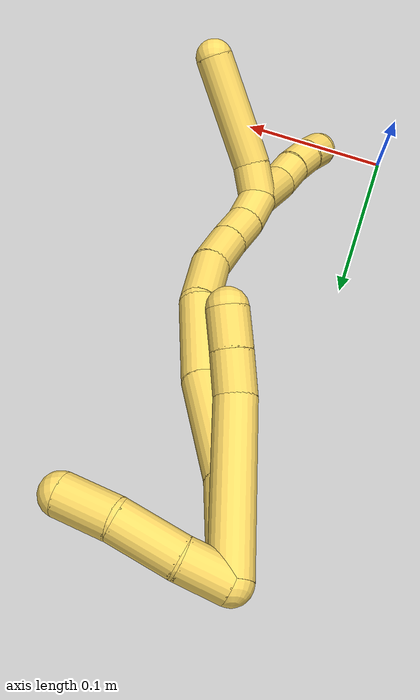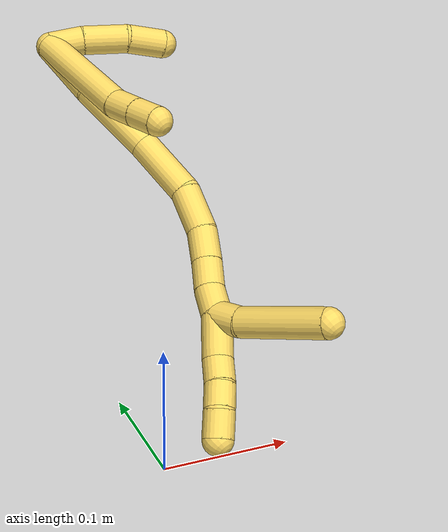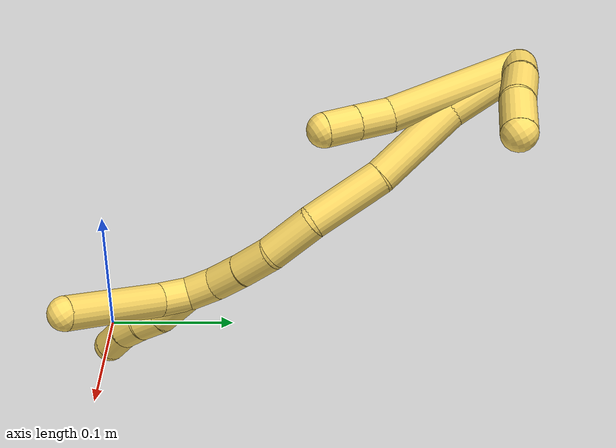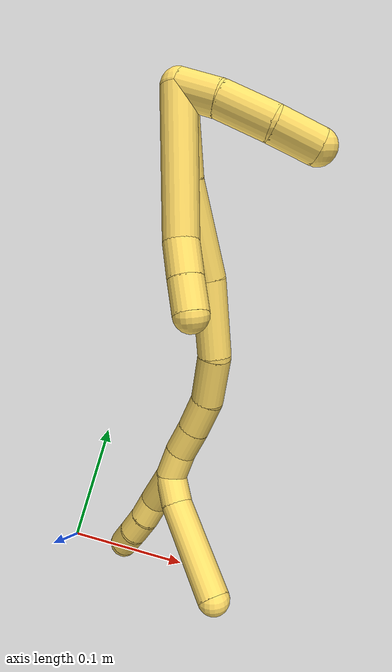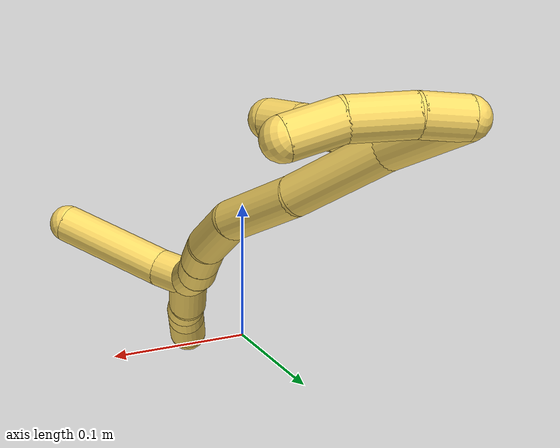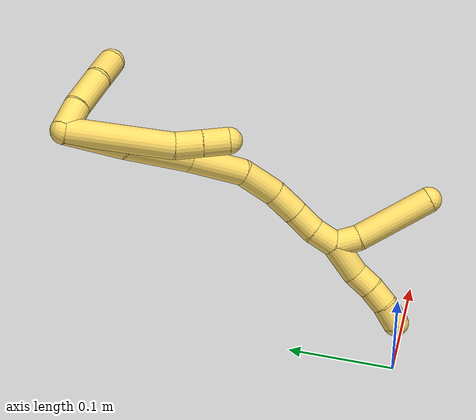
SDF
<sdf version="1.7">
 <world name="default">
  <model name="5">
   <static>0</static>
   <link name="5">
    <collision name="collision-cylinder-e_1_2_8">
     <pose>0.002939 -0.010039 -0.048881 2.93903 0.058821 0.563554</pose>
     <geometry><cylinder><radius>0.0125</radius><length>0.099975</length></cylinder></geometry>
     <surface>
      <friction><ode><mu>1.16</mu><mu2>1.16</mu2><slip1>0</slip1><slip2>0</slip2></ode></friction>
      <contact><ode><kp>1e+06</kp><kd>1</kd><max_vel>0</max_vel><min_depth>0.001</min_depth></ode></contact>
     </surface>
    </collision>
    <visual name="visual-cylinder-e_1_2_8">
     <pose>0.002939 -0.010039 -0.048881 2.93903 0.058821 0.563554</pose>
     <geometry><cylinder><radius>0.0125</radius><length>0.099975</length></cylinder></geometry>
     <material><ambient>1 0.858824 0.4 1</ambient></material>
    </visual>
    <collision name="collision-cylinder-e_2_8_9">
     <pose>0.00922 -0.023979 -0.10948 2.82025 0.264301 1.37385</pose>
     <geometry><cylinder><radius>0.0125</radius><length>0.025591</length></cylinder></geometry>
     <surface>
      <friction><ode><mu>1.16</mu><mu2>1.16</mu2><slip1>0</slip1><slip2>0</slip2></ode></friction>
      <contact><ode><kp>1e+06</kp><kd>1</kd><max_vel>0</max_vel><min_depth>0.001</min_depth></ode></contact>
     </surface>
    </collision>
    <visual name="visual-cylinder-e_2_8_9">
     <pose>0.00922 -0.023979 -0.10948 2.82025 0.264301 1.37385</pose>
     <geometry><cylinder><radius>0.0125</radius><length>0.025591</length></cylinder></geometry>
     <material><ambient>1 0.858824 0.4 1</ambient></material>
    </visual>
    <collision name="collision-cylinder-e_3_9_6">
     <pose>0.015956 -0.031481 -0.13237 2.82972 0.281454 1.46683</pose>
     <geometry><cylinder><radius>0.0125</radius><length>0.024434</length></cylinder></geometry>
     <surface>
      <friction><ode><mu>1.16</mu><mu2>1.16</mu2><slip1>0</slip1><slip2>0</slip2></ode></friction>
      <contact><ode><kp>1e+06</kp><kd>1</kd><max_vel>0</max_vel><min_depth>0.001</min_depth></ode></contact>
     </surface>
    </collision>
    <visual name="visual-cylinder-e_3_9_6">
     <pose>0.015956 -0.031481 -0.13237 2.82972 0.281454 1.46683</pose>
     <geometry><cylinder><radius>0.0125</radius><length>0.024434</length></cylinder></geometry>
     <material><ambient>1 0.858824 0.4 1</ambient></material>
    </visual>
    <collision name="collision-cylinder-e_1_2_10">
     <pose>0.012806 0.003598 -0.005321 -2.547 1.10585 -2.21999</pose>
     <geometry><cylinder><radius>0.0125</radius><length>0.028654</length></cylinder></geometry>
     <surface>
      <friction><ode><mu>1.16</mu><mu2>1.16</mu2><slip1>0</slip1><slip2>0</slip2></ode></friction>
      <contact><ode><kp>1e+06</kp><kd>1</kd><max_vel>0</max_vel><min_depth>0.001</min_depth></ode></contact>
     </surface>
    </collision>
    <visual name="visual-cylinder-e_1_2_10">
     <pose>0.012806 0.003598 -0.005321 -2.547 1.10585 -2.21999</pose>
     <geometry><cylinder><radius>0.0125</radius><length>0.028654</length></cylinder></geometry>
     <material><ambient>1 0.858824 0.4 1</ambient></material>
    </visual>
    <collision name="collision-cylinder-e_2_10_11">
     <pose>0.041375 0.013219 -0.02011 -2.57504 0.952163 -2.1137</pose>
     <geometry><cylinder><radius>0.0125</radius><length>0.038697</length></cylinder></geometry>
     <surface>
      <friction><ode><mu>1.16</mu><mu2>1.16</mu2><slip1>0</slip1><slip2>0</slip2></ode></friction>
      <contact><ode><kp>1e+06</kp><kd>1</kd><max_vel>0</max_vel><min_depth>0.001</min_depth></ode></contact>
     </surface>
    </collision>
    <visual name="visual-cylinder-e_2_10_11">
     <pose>0.041375 0.013219 -0.02011 -2.57504 0.952163 -2.1137</pose>
     <geometry><cylinder><radius>0.0125</radius><length>0.038697</length></cylinder></geometry>
     <material><ambient>1 0.858824 0.4 1</ambient></material>
    </visual>
    <collision name="collision-cylinder-e_3_11_5">
     <pose>0.068519 0.027801 -0.037559 -2.3212 0.771458 -1.50234</pose>
     <geometry><cylinder><radius>0.0125</radius><length>0.032649</length></cylinder></geometry>
     <surface>
      <friction><ode><mu>1.16</mu><mu2>1.16</mu2><slip1>0</slip1><slip2>0</slip2></ode></friction>
      <contact><ode><kp>1e+06</kp><kd>1</kd><max_vel>0</max_vel><min_depth>0.001</min_depth></ode></contact>
     </surface>
    </collision>
    <visual name="visual-cylinder-e_3_11_5">
     <pose>0.068519 0.027801 -0.037559 -2.3212 0.771458 -1.50234</pose>
     <geometry><cylinder><radius>0.0125</radius><length>0.032649</length></cylinder></geometry>
     <material><ambient>1 0.858824 0.4 1</ambient></material>
    </visual>
    <collision name="collision-cylinder-e_1_2_12">
     <pose>-0.000175 0.000205 -0.02938 -3.13463 -0.00596 1.41583</pose>
     <geometry><cylinder><radius>0.0125</radius><length>0.058763</length></cylinder></geometry>
     <surface>
      <friction><ode><mu>1.16</mu><mu2>1.16</mu2><slip1>0</slip1><slip2>0</slip2></ode></friction>
      <contact><ode><kp>1e+06</kp><kd>1</kd><max_vel>0</max_vel><min_depth>0.001</min_depth></ode></contact>
     </surface>
    </collision>
    <visual name="visual-cylinder-e_1_2_12">
     <pose>-0.000175 0.000205 -0.02938 -3.13463 -0.00596 1.41583</pose>
     <geometry><cylinder><radius>0.0125</radius><length>0.058763</length></cylinder></geometry>
     <material><ambient>1 0.858824 0.4 1</ambient></material>
    </visual>
    <collision name="collision-cylinder-e_2_12_13">
     <pose>0.002069 0.006655 -0.09262 -2.95917 0.070133 -0.732471</pose>
     <geometry><cylinder><radius>0.0125</radius><length>0.069031</length></cylinder></geometry>
     <surface>
      <friction><ode><mu>1.16</mu><mu2>1.16</mu2><slip1>0</slip1><slip2>0</slip2></ode></friction>
      <contact><ode><kp>1e+06</kp><kd>1</kd><max_vel>0</max_vel><min_depth>0.001</min_depth></ode></contact>
     </surface>
    </collision>
    <visual name="visual-cylinder-e_2_12_13">
     <pose>0.002069 0.006655 -0.09262 -2.95917 0.070133 -0.732471</pose>
     <geometry><cylinder><radius>0.0125</radius><length>0.069031</length></cylinder></geometry>
     <material><ambient>1 0.858824 0.4 1</ambient></material>
    </visual>
    <collision name="collision-cylinder-e_3_13_14">
     <pose>0.004316 0.013487 -0.155008 -3.12107 -0.006003 0.569058</pose>
     <geometry><cylinder><radius>0.0125</radius><length>0.057071</length></cylinder></geometry>
     <surface>
      <friction><ode><mu>1.16</mu><mu2>1.16</mu2><slip1>0</slip1><slip2>0</slip2></ode></friction>
      <contact><ode><kp>1e+06</kp><kd>1</kd><max_vel>0</max_vel><min_depth>0.001</min_depth></ode></contact>
     </surface>
    </collision>
    <visual name="visual-cylinder-e_3_13_14">
     <pose>0.004316 0.013487 -0.155008 -3.12107 -0.006003 0.569058</pose>
     <geometry><cylinder><radius>0.0125</radius><length>0.057071</length></cylinder></geometry>
     <material><ambient>1 0.858824 0.4 1</ambient></material>
    </visual>
    <collision name="collision-cylinder-e_4_14_15">
     <pose>-0.001527 0.015624 -0.201604 -3.05597 -0.30312 2.59466</pose>
     <geometry><cylinder><radius>0.0125</radius><length>0.037998</length></cylinder></geometry>
     <surface>
      <friction><ode><mu>1.16</mu><mu2>1.16</mu2><slip1>0</slip1><slip2>0</slip2></ode></friction>
      <contact><ode><kp>1e+06</kp><kd>1</kd><max_vel>0</max_vel><min_depth>0.001</min_depth></ode></contact>
     </surface>
    </collision>
    <visual name="visual-cylinder-e_4_14_15">
     <pose>-0.001527 0.015624 -0.201604 -3.05597 -0.30312 2.59466</pose>
     <geometry><cylinder><radius>0.0125</radius><length>0.037998</length></cylinder></geometry>
     <material><ambient>1 0.858824 0.4 1</ambient></material>
    </visual>
    <collision name="collision-cylinder-e_5_15_16">
     <pose>-0.014234 0.016713 -0.231954 3.10408 -0.519892 -3.00077</pose>
     <geometry><cylinder><radius>0.0125</radius><length>0.028328</length></cylinder></geometry>
     <surface>
      <friction><ode><mu>1.16</mu><mu2>1.16</mu2><slip1>0</slip1><slip2>0</slip2></ode></friction>
      <contact><ode><kp>1e+06</kp><kd>1</kd><max_vel>0</max_vel><min_depth>0.001</min_depth></ode></contact>
     </surface>
    </collision>
    <visual name="visual-cylinder-e_5_15_16">
     <pose>-0.014234 0.016713 -0.231954 3.10408 -0.519892 -3.00077</pose>
     <geometry><cylinder><radius>0.0125</radius><length>0.028328</length></cylinder></geometry>
     <material><ambient>1 0.858824 0.4 1</ambient></material>
    </visual>
    <collision name="collision-cylinder-e_6_16_17">
     <pose>-0.027863 0.015308 -0.25462 3.05089 -0.563873 -2.83076</pose>
     <geometry><cylinder><radius>0.0125</radius><length>0.024668</length></cylinder></geometry>
     <surface>
      <friction><ode><mu>1.16</mu><mu2>1.16</mu2><slip1>0</slip1><slip2>0</slip2></ode></friction>
      <contact><ode><kp>1e+06</kp><kd>1</kd><max_vel>0</max_vel><min_depth>0.001</min_depth></ode></contact>
     </surface>
    </collision>
    <visual name="visual-cylinder-e_6_16_17">
     <pose>-0.027863 0.015308 -0.25462 3.05089 -0.563873 -2.83076</pose>
     <geometry><cylinder><radius>0.0125</radius><length>0.024668</length></cylinder></geometry>
     <material><ambient>1 0.858824 0.4 1</ambient></material>
    </visual>
    <collision name="collision-cylinder-e_7_17_1">
     <pose>-0.039003 0.012237 -0.275978 2.95022 -0.386376 -2.22934</pose>
     <geometry><cylinder><radius>0.0125</radius><length>0.02414</length></cylinder></geometry>
     <surface>
      <friction><ode><mu>1.16</mu><mu2>1.16</mu2><slip1>0</slip1><slip2>0</slip2></ode></friction>
      <contact><ode><kp>1e+06</kp><kd>1</kd><max_vel>0</max_vel><min_depth>0.001</min_depth></ode></contact>
     </surface>
    </collision>
    <visual name="visual-cylinder-e_7_17_1">
     <pose>-0.039003 0.012237 -0.275978 2.95022 -0.386376 -2.22934</pose>
     <geometry><cylinder><radius>0.0125</radius><length>0.02414</length></cylinder></geometry>
     <material><ambient>1 0.858824 0.4 1</ambient></material>
    </visual>
    <collision name="collision-cylinder-e_1_1_18">
     <pose>-0.054552 0.011905 -0.30085 -3.0132 -0.66557 2.77381</pose>
     <geometry><cylinder><radius>0.0125</radius><length>0.035627</length></cylinder></geometry>
     <surface>
      <friction><ode><mu>1.16</mu><mu2>1.16</mu2><slip1>0</slip1><slip2>0</slip2></ode></friction>
      <contact><ode><kp>1e+06</kp><kd>1</kd><max_vel>0</max_vel><min_depth>0.001</min_depth></ode></contact>
     </surface>
    </collision>
    <visual name="visual-cylinder-e_1_1_18">
     <pose>-0.054552 0.011905 -0.30085 -3.0132 -0.66557 2.77381</pose>
     <geometry><cylinder><radius>0.0125</radius><length>0.035627</length></cylinder></geometry>
     <material><ambient>1 0.858824 0.4 1</ambient></material>
    </visual>
    <collision name="collision-cylinder-e_2_18_19">
     <pose>-0.071102 0.012028 -0.323599 2.95501 -0.552169 -2.50368</pose>
     <geometry><cylinder><radius>0.0125</radius><length>0.021163</length></cylinder></geometry>
     <surface>
      <friction><ode><mu>1.16</mu><mu2>1.16</mu2><slip1>0</slip1><slip2>0</slip2></ode></friction>
      <contact><ode><kp>1e+06</kp><kd>1</kd><max_vel>0</max_vel><min_depth>0.001</min_depth></ode></contact>
     </surface>
    </collision>
    <visual name="visual-cylinder-e_2_18_19">
     <pose>-0.071102 0.012028 -0.323599 2.95501 -0.552169 -2.50368</pose>
     <geometry><cylinder><radius>0.0125</radius><length>0.021163</length></cylinder></geometry>
     <material><ambient>1 0.858824 0.4 1</ambient></material>
    </visual>
    <collision name="collision-cylinder-e_3_19_20">
     <pose>-0.083169 0.009533 -0.340428 3.03878 -0.682417 -2.8538</pose>
     <geometry><cylinder><radius>0.0125</radius><length>0.020666</length></cylinder></geometry>
     <surface>
      <friction><ode><mu>1.16</mu><mu2>1.16</mu2><slip1>0</slip1><slip2>0</slip2></ode></friction>
      <contact><ode><kp>1e+06</kp><kd>1</kd><max_vel>0</max_vel><min_depth>0.001</min_depth></ode></contact>
     </surface>
    </collision>
    <visual name="visual-cylinder-e_3_19_20">
     <pose>-0.083169 0.009533 -0.340428 3.03878 -0.682417 -2.8538</pose>
     <geometry><cylinder><radius>0.0125</radius><length>0.020666</length></cylinder></geometry>
     <material><ambient>1 0.858824 0.4 1</ambient></material>
    </visual>
    <collision name="collision-cylinder-e_4_20_4">
     <pose>-0.097261 0.01006 -0.356642 -2.97922 -0.736974 2.72622</pose>
     <geometry><cylinder><radius>0.0125</radius><length>0.022544</length></cylinder></geometry>
     <surface>
      <friction><ode><mu>1.16</mu><mu2>1.16</mu2><slip1>0</slip1><slip2>0</slip2></ode></friction>
      <contact><ode><kp>1e+06</kp><kd>1</kd><max_vel>0</max_vel><min_depth>0.001</min_depth></ode></contact>
     </surface>
    </collision>
    <visual name="visual-cylinder-e_4_20_4">
     <pose>-0.097261 0.01006 -0.356642 -2.97922 -0.736974 2.72622</pose>
     <geometry><cylinder><radius>0.0125</radius><length>0.022544</length></cylinder></geometry>
     <material><ambient>1 0.858824 0.4 1</ambient></material>
    </visual>
    <collision name="collision-cylinder-e_1_1_21">
     <pose>-0.038714 0.006102 -0.296909 2.75874 0.423553 1.67444</pose>
     <geometry><cylinder><radius>0.0125</radius><length>0.023543</length></cylinder></geometry>
     <surface>
      <friction><ode><mu>1.16</mu><mu2>1.16</mu2><slip1>0</slip1><slip2>0</slip2></ode></friction>
      <contact><ode><kp>1e+06</kp><kd>1</kd><max_vel>0</max_vel><min_depth>0.001</min_depth></ode></contact>
     </surface>
    </collision>
    <visual name="visual-cylinder-e_1_1_21">
     <pose>-0.038714 0.006102 -0.296909 2.75874 0.423553 1.67444</pose>
     <geometry><cylinder><radius>0.0125</radius><length>0.023543</length></cylinder></geometry>
     <material><ambient>1 0.858824 0.4 1</ambient></material>
    </visual>
    <collision name="collision-cylinder-e_2_21_3">
     <pose>-0.010747 -0.011283 -0.334205 2.6866 0.649777 1.93726</pose>
     <geometry><cylinder><radius>0.0125</radius><length>0.076457</length></cylinder></geometry>
     <surface>
      <friction><ode><mu>1.16</mu><mu2>1.16</mu2><slip1>0</slip1><slip2>0</slip2></ode></friction>
      <contact><ode><kp>1e+06</kp><kd>1</kd><max_vel>0</max_vel><min_depth>0.001</min_depth></ode></contact>
     </surface>
    </collision>
    <visual name="visual-cylinder-e_2_21_3">
     <pose>-0.010747 -0.011283 -0.334205 2.6866 0.649777 1.93726</pose>
     <geometry><cylinder><radius>0.0125</radius><length>0.076457</length></cylinder></geometry>
     <material><ambient>1 0.858824 0.4 1</ambient></material>
    </visual>
    <collision name="collision-sphere-3">
     <pose>0.012381 -0.02466 -0.361546 0 -0 0</pose>
     <geometry><sphere><radius>0.0125</radius></sphere></geometry>
     <surface>
      <friction><ode><mu>1.16</mu><mu2>1.16</mu2><slip1>0</slip1><slip2>0</slip2></ode></friction>
      <contact><ode><kp>1e+06</kp><kd>1</kd><max_vel>0</max_vel><min_depth>0.001</min_depth></ode></contact>
     </surface>
    </collision>
    <visual name="visual-sphere-3">
     <pose>0.012381 -0.02466 -0.361546 0 -0 0</pose>
     <geometry><sphere><radius>0.0125</radius></sphere></geometry>
     <material><ambient>1 0.858824 0.4 1</ambient></material>
    </visual>
    <collision name="collision-sphere-21">
     <pose>-0.033876 0.002093 -0.306863 0 -0 0</pose>
     <geometry><sphere><radius>0.0125</radius></sphere></geometry>
     <surface>
      <friction><ode><mu>1.16</mu><mu2>1.16</mu2><slip1>0</slip1><slip2>0</slip2></ode></friction>
      <contact><ode><kp>1e+06</kp><kd>1</kd><max_vel>0</max_vel><min_depth>0.001</min_depth></ode></contact>
     </surface>
    </collision>
    <visual name="visual-sphere-21">
     <pose>-0.033876 0.002093 -0.306863 0 -0 0</pose>
     <geometry><sphere><radius>0.0125</radius></sphere></geometry>
     <material><ambient>1 0.858824 0.4 1</ambient></material>
    </visual>
    <collision name="collision-sphere-4">
     <pose>-0.104837 0.011409 -0.364879 0 -0 0</pose>
     <geometry><sphere><radius>0.0125</radius></sphere></geometry>
     <surface>
      <friction><ode><mu>1.16</mu><mu2>1.16</mu2><slip1>0</slip1><slip2>0</slip2></ode></friction>
      <contact><ode><kp>1e+06</kp><kd>1</kd><max_vel>0</max_vel><min_depth>0.001</min_depth></ode></contact>
     </surface>
    </collision>
    <visual name="visual-sphere-4">
     <pose>-0.104837 0.011409 -0.364879 0 -0 0</pose>
     <geometry><sphere><radius>0.0125</radius></sphere></geometry>
     <material><ambient>1 0.858824 0.4 1</ambient></material>
    </visual>
    <collision name="collision-sphere-20">
     <pose>-0.089686 0.00871 -0.348405 0 -0 0</pose>
     <geometry><sphere><radius>0.0125</radius></sphere></geometry>
     <surface>
      <friction><ode><mu>1.16</mu><mu2>1.16</mu2><slip1>0</slip1><slip2>0</slip2></ode></friction>
      <contact><ode><kp>1e+06</kp><kd>1</kd><max_vel>0</max_vel><min_depth>0.001</min_depth></ode></contact>
     </surface>
    </collision>
    <visual name="visual-sphere-20">
     <pose>-0.089686 0.00871 -0.348405 0 -0 0</pose>
     <geometry><sphere><radius>0.0125</radius></sphere></geometry>
     <material><ambient>1 0.858824 0.4 1</ambient></material>
    </visual>
    <collision name="collision-sphere-11">
     <pose>0.057138 0.019242 -0.029578 0 -0 0</pose>
     <geometry><sphere><radius>0.0125</radius></sphere></geometry>
     <surface>
      <friction><ode><mu>1.16</mu><mu2>1.16</mu2><slip1>0</slip1><slip2>0</slip2></ode></friction>
      <contact><ode><kp>1e+06</kp><kd>1</kd><max_vel>0</max_vel><min_depth>0.001</min_depth></ode></contact>
     </surface>
    </collision>
    <visual name="visual-sphere-11">
     <pose>0.057138 0.019242 -0.029578 0 -0 0</pose>
     <geometry><sphere><radius>0.0125</radius></sphere></geometry>
     <material><ambient>1 0.858824 0.4 1</ambient></material>
    </visual>
    <collision name="collision-sphere-10">
     <pose>0.025612 0.007197 -0.010643 0 -0 0</pose>
     <geometry><sphere><radius>0.0125</radius></sphere></geometry>
     <surface>
      <friction><ode><mu>1.16</mu><mu2>1.16</mu2><slip1>0</slip1><slip2>0</slip2></ode></friction>
      <contact><ode><kp>1e+06</kp><kd>1</kd><max_vel>0</max_vel><min_depth>0.001</min_depth></ode></contact>
     </surface>
    </collision>
    <visual name="visual-sphere-10">
     <pose>0.025612 0.007197 -0.010643 0 -0 0</pose>
     <geometry><sphere><radius>0.0125</radius></sphere></geometry>
     <material><ambient>1 0.858824 0.4 1</ambient></material>
    </visual>
    <collision name="collision-sphere-6">
     <pose>0.019349 -0.035082 -0.14354 0 -0 0</pose>
     <geometry><sphere><radius>0.0125</radius></sphere></geometry>
     <surface>
      <friction><ode><mu>1.16</mu><mu2>1.16</mu2><slip1>0</slip1><slip2>0</slip2></ode></friction>
      <contact><ode><kp>1e+06</kp><kd>1</kd><max_vel>0</max_vel><min_depth>0.001</min_depth></ode></contact>
     </surface>
    </collision>
    <visual name="visual-sphere-6">
     <pose>0.019349 -0.035082 -0.14354 0 -0 0</pose>
     <geometry><sphere><radius>0.0125</radius></sphere></geometry>
     <material><ambient>1 0.858824 0.4 1</ambient></material>
    </visual>
    <collision name="collision-sphere-9">
     <pose>0.012563 -0.02788 -0.1212 0 -0 0</pose>
     <geometry><sphere><radius>0.0125</radius></sphere></geometry>
     <surface>
      <friction><ode><mu>1.16</mu><mu2>1.16</mu2><slip1>0</slip1><slip2>0</slip2></ode></friction>
      <contact><ode><kp>1e+06</kp><kd>1</kd><max_vel>0</max_vel><min_depth>0.001</min_depth></ode></contact>
     </surface>
    </collision>
    <visual name="visual-sphere-9">
     <pose>0.012563 -0.02788 -0.1212 0 -0 0</pose>
     <geometry><sphere><radius>0.0125</radius></sphere></geometry>
     <material><ambient>1 0.858824 0.4 1</ambient></material>
    </visual>
    <collision name="collision-sphere-2">
     <geometry><sphere><radius>0.0125</radius></sphere></geometry>
     <surface>
      <friction><ode><mu>1.16</mu><mu2>1.16</mu2><slip1>0</slip1><slip2>0</slip2></ode></friction>
      <contact><ode><kp>1e+06</kp><kd>1</kd><max_vel>0</max_vel><min_depth>0.001</min_depth></ode></contact>
     </surface>
    </collision>
    <visual name="visual-sphere-2">
     <geometry><sphere><radius>0.0125</radius></sphere></geometry>
     <material><ambient>1 0.858824 0.4 1</ambient></material>
    </visual>
    <collision name="collision-sphere-19">
     <pose>-0.076653 0.010356 -0.332452 0 -0 0</pose>
     <geometry><sphere><radius>0.0125</radius></sphere></geometry>
     <surface>
      <friction><ode><mu>1.16</mu><mu2>1.16</mu2><slip1>0</slip1><slip2>0</slip2></ode></friction>
      <contact><ode><kp>1e+06</kp><kd>1</kd><max_vel>0</max_vel><min_depth>0.001</min_depth></ode></contact>
     </surface>
    </collision>
    <visual name="visual-sphere-19">
     <pose>-0.076653 0.010356 -0.332452 0 -0 0</pose>
     <geometry><sphere><radius>0.0125</radius></sphere></geometry>
     <material><ambient>1 0.858824 0.4 1</ambient></material>
    </visual>
    <collision name="collision-sphere-8">
     <pose>0.005877 -0.020078 -0.097761 0 -0 0</pose>
     <geometry><sphere><radius>0.0125</radius></sphere></geometry>
     <surface>
      <friction><ode><mu>1.16</mu><mu2>1.16</mu2><slip1>0</slip1><slip2>0</slip2></ode></friction>
      <contact><ode><kp>1e+06</kp><kd>1</kd><max_vel>0</max_vel><min_depth>0.001</min_depth></ode></contact>
     </surface>
    </collision>
    <visual name="visual-sphere-8">
     <pose>0.005877 -0.020078 -0.097761 0 -0 0</pose>
     <geometry><sphere><radius>0.0125</radius></sphere></geometry>
     <material><ambient>1 0.858824 0.4 1</ambient></material>
    </visual>
    <collision name="collision-sphere-5">
     <pose>0.0799 0.036361 -0.045539 0 -0 0</pose>
     <geometry><sphere><radius>0.0125</radius></sphere></geometry>
     <surface>
      <friction><ode><mu>1.16</mu><mu2>1.16</mu2><slip1>0</slip1><slip2>0</slip2></ode></friction>
      <contact><ode><kp>1e+06</kp><kd>1</kd><max_vel>0</max_vel><min_depth>0.001</min_depth></ode></contact>
     </surface>
    </collision>
    <visual name="visual-sphere-5">
     <pose>0.0799 0.036361 -0.045539 0 -0 0</pose>
     <geometry><sphere><radius>0.0125</radius></sphere></geometry>
     <material><ambient>1 0.858824 0.4 1</ambient></material>
    </visual>
    <collision name="collision-sphere-12">
     <pose>-0.00035 0.000409 -0.05876 0 -0 0</pose>
     <geometry><sphere><radius>0.0125</radius></sphere></geometry>
     <surface>
      <friction><ode><mu>1.16</mu><mu2>1.16</mu2><slip1>0</slip1><slip2>0</slip2></ode></friction>
      <contact><ode><kp>1e+06</kp><kd>1</kd><max_vel>0</max_vel><min_depth>0.001</min_depth></ode></contact>
     </surface>
    </collision>
    <visual name="visual-sphere-12">
     <pose>-0.00035 0.000409 -0.05876 0 -0 0</pose>
     <geometry><sphere><radius>0.0125</radius></sphere></geometry>
     <material><ambient>1 0.858824 0.4 1</ambient></material>
    </visual>
    <collision name="collision-sphere-13">
     <pose>0.004487 0.012902 -0.126479 0 -0 0</pose>
     <geometry><sphere><radius>0.0125</radius></sphere></geometry>
     <surface>
      <friction><ode><mu>1.16</mu><mu2>1.16</mu2><slip1>0</slip1><slip2>0</slip2></ode></friction>
      <contact><ode><kp>1e+06</kp><kd>1</kd><max_vel>0</max_vel><min_depth>0.001</min_depth></ode></contact>
     </surface>
    </collision>
    <visual name="visual-sphere-13">
     <pose>0.004487 0.012902 -0.126479 0 -0 0</pose>
     <geometry><sphere><radius>0.0125</radius></sphere></geometry>
     <material><ambient>1 0.858824 0.4 1</ambient></material>
    </visual>
    <collision name="collision-sphere-14">
     <pose>0.004145 0.014073 -0.183537 0 -0 0</pose>
     <geometry><sphere><radius>0.0125</radius></sphere></geometry>
     <surface>
      <friction><ode><mu>1.16</mu><mu2>1.16</mu2><slip1>0</slip1><slip2>0</slip2></ode></friction>
      <contact><ode><kp>1e+06</kp><kd>1</kd><max_vel>0</max_vel><min_depth>0.001</min_depth></ode></contact>
     </surface>
    </collision>
    <visual name="visual-sphere-14">
     <pose>0.004145 0.014073 -0.183537 0 -0 0</pose>
     <geometry><sphere><radius>0.0125</radius></sphere></geometry>
     <material><ambient>1 0.858824 0.4 1</ambient></material>
    </visual>
    <collision name="collision-sphere-15">
     <pose>-0.007198 0.017174 -0.21967 0 -0 0</pose>
     <geometry><sphere><radius>0.0125</radius></sphere></geometry>
     <surface>
      <friction><ode><mu>1.16</mu><mu2>1.16</mu2><slip1>0</slip1><slip2>0</slip2></ode></friction>
      <contact><ode><kp>1e+06</kp><kd>1</kd><max_vel>0</max_vel><min_depth>0.001</min_depth></ode></contact>
     </surface>
    </collision>
    <visual name="visual-sphere-15">
     <pose>-0.007198 0.017174 -0.21967 0 -0 0</pose>
     <geometry><sphere><radius>0.0125</radius></sphere></geometry>
     <material><ambient>1 0.858824 0.4 1</ambient></material>
    </visual>
    <collision name="collision-sphere-16">
     <pose>-0.021271 0.016252 -0.244238 0 -0 0</pose>
     <geometry><sphere><radius>0.0125</radius></sphere></geometry>
     <surface>
      <friction><ode><mu>1.16</mu><mu2>1.16</mu2><slip1>0</slip1><slip2>0</slip2></ode></friction>
      <contact><ode><kp>1e+06</kp><kd>1</kd><max_vel>0</max_vel><min_depth>0.001</min_depth></ode></contact>
     </surface>
    </collision>
    <visual name="visual-sphere-16">
     <pose>-0.021271 0.016252 -0.244238 0 -0 0</pose>
     <geometry><sphere><radius>0.0125</radius></sphere></geometry>
     <material><ambient>1 0.858824 0.4 1</ambient></material>
    </visual>
    <collision name="collision-sphere-17">
     <pose>-0.034455 0.014364 -0.265002 0 -0 0</pose>
     <geometry><sphere><radius>0.0125</radius></sphere></geometry>
     <surface>
      <friction><ode><mu>1.16</mu><mu2>1.16</mu2><slip1>0</slip1><slip2>0</slip2></ode></friction>
      <contact><ode><kp>1e+06</kp><kd>1</kd><max_vel>0</max_vel><min_depth>0.001</min_depth></ode></contact>
     </surface>
    </collision>
    <visual name="visual-sphere-17">
     <pose>-0.034455 0.014364 -0.265002 0 -0 0</pose>
     <geometry><sphere><radius>0.0125</radius></sphere></geometry>
     <material><ambient>1 0.858824 0.4 1</ambient></material>
    </visual>
    <collision name="collision-sphere-1">
     <pose>-0.043552 0.010111 -0.286954 0 -0 0</pose>
     <geometry><sphere><radius>0.0125</radius></sphere></geometry>
     <surface>
      <friction><ode><mu>1.16</mu><mu2>1.16</mu2><slip1>0</slip1><slip2>0</slip2></ode></friction>
      <contact><ode><kp>1e+06</kp><kd>1</kd><max_vel>0</max_vel><min_depth>0.001</min_depth></ode></contact>
     </surface>
    </collision>
    <visual name="visual-sphere-1">
     <pose>-0.043552 0.010111 -0.286954 0 -0 0</pose>
     <geometry><sphere><radius>0.0125</radius></sphere></geometry>
     <material><ambient>1 0.858824 0.4 1</ambient></material>
    </visual>
    <collision name="collision-sphere-18">
     <pose>-0.065552 0.013699 -0.314746 0 -0 0</pose>
     <geometry><sphere><radius>0.0125</radius></sphere></geometry>
     <surface>
      <friction><ode><mu>1.16</mu><mu2>1.16</mu2><slip1>0</slip1><slip2>0</slip2></ode></friction>
      <contact><ode><kp>1e+06</kp><kd>1</kd><max_vel>0</max_vel><min_depth>0.001</min_depth></ode></contact>
     </surface>
    </collision>
    <visual name="visual-sphere-18">
     <pose>-0.065552 0.013699 -0.314746 0 -0 0</pose>
     <geometry><sphere><radius>0.0125</radius></sphere></geometry>
     <material><ambient>1 0.858824 0.4 1</ambient></material>
    </visual>
    <inertial>
     <pose>-0.007573 0.003334 -0.163208 0 -0 0</pose>
     <mass>0.75</mass>
     <inertia>
      <ixx>0.000172</ixx>
      <ixy>0</ixy>
      <ixz>0</ixz>
      <iyy>2.6e-05</iyy>
      <iyz>0</iyz>
      <izz>-5.9e-05</izz>
     </inertia>
    </inertial>
   </link>
   <pose>0.015618 0.310714 0.235352 -1.02709 -0.558557 0.044896</pose>
  </model>
 </world>
</sdf>
